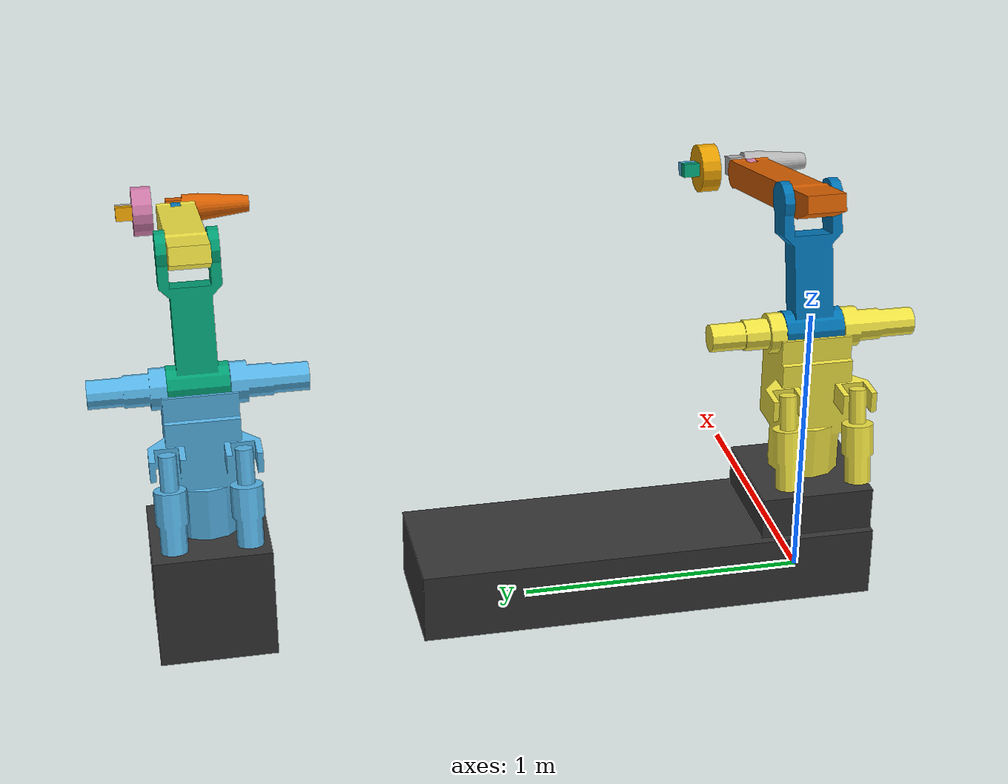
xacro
<?xml version="1.0"?>
<robot name="irp6" xmlns:xacro="http://www.ros.org/wiki/xacro">
  <property name="M_PI" value="3.14159"/>

  <xacro:include filename="$(find irp6_description)/robots/irp6both.gazebo" />
  <link name="world">
  </link>

  <joint name="base_joint" type="fixed">
    <parent link="world"/>
    <child link="tl_base"/>
  </joint>

<link name="tl_base">
  <inertial>
    <mass value="100"/>
    <inertia ixx="0" ixy="0" ixz="0" iyy="0" iyz="0" izz="0" />
    <origin xyz="0 0 0"/>
  </inertial>
  <visual>
    <origin xyz="0 .6045 .125" />
    <geometry>
      <box size=".462 1.609 .25" />
    </geometry>
    <material name="gray">
      <color rgba=".2 .2 .2 1" />
    </material>
  </visual>

  <collision>
    <origin xyz="0 .6045 .07" />
    <geometry>
      <box size=".462 1.609 .2" />
    </geometry>
  </collision>
</link>

<link name="tl_t">
  <inertial>
    <mass value="50"/>
    <inertia ixx="1" ixy="0" ixz="0" iyy="1" iyz="0" izz="1" />
    <origin xyz="0 0 0"/>
  </inertial>
  <visual>
    <origin xyz="0 0 0.075" />
    <geometry>
      <box size="0.4 0.4 0.15" />
    </geometry>
    <material name="gray">
      <color rgba=".2 .2 .2 1" />
    </material>
  </visual>

  <collision>
    <origin xyz="0 0 0" />
    <geometry>
      <box size=".0 .0 .0" />
    </geometry>
  </collision>
</link>

<joint name="Irp6otmJoint1" type="prismatic">
  <parent link="tl_base"/>
  <child link="tl_t"/>
  <origin xyz="0 0 .25" rpy="0 0 0" />
  <axis xyz="0 1 0" />
  <limit upper="1.209" lower="0" effort="10" velocity=".53" />
</joint>

  <joint name="Irp6otmJoint2" type="revolute">
    <origin rpy="0 0 0" xyz="0.0 0.0 0.3"/>
    <axis xyz="0 0 1"/>
    <limit lower="-2.96705973" upper="2.96705973" effort="10.0" velocity="10.0" />
    <parent link="tl_t"/>
    <child link="tl_1"/>
  </joint>

  <link name="tl_1">
    <inertial>
      <mass value="50"/>
      <origin xyz="0.0 0.0 0.0"/>
      <inertia ixx="10" ixy="0" ixz="0" iyy="10" iyz="0" izz="10"/>
    </inertial>

    <visual>
      <origin rpy="-1.57 0 0.0" xyz="0 0 0.4"/>
      <geometry>
        <mesh filename="package://irp6_description/meshes/link1.dae" />
      </geometry>
    </visual>

    <collision>
      <origin rpy="-1.57 0 0.0" xyz="0 0 0.4"/>
      <geometry>
	<box size="0.1 0.10 0.1"/>
      </geometry>
    </collision>
  </link>

  <joint name="Irp6otmJoint3" type="revolute">
    <origin rpy="-1.570795 0 0" xyz="0.0 0.0 0.4"/>
    <axis xyz="0 0 1"/>
    <limit lower="-1.8" upper="-0.872664626" effort="10.0" velocity="10.0" />
    <parent link="tl_1"/>
    <child link="tl_2"/>
  </joint>

  <link name="tl_2">
    <inertial>
      <mass value="20"/>
      <origin xyz="0.0 0.0 0.0"/>
      <inertia ixx="10" ixy="0" ixz="0" iyy="10" iyz="0" izz="10"/>
    </inertial>

    <visual>
      <origin rpy="0 0 0.0" xyz="0.455 0.0 0.0"/>
      <geometry>
        <mesh filename="package://irp6_description/meshes/link2.dae" />
      </geometry>
    </visual>

    <collision>
      <origin rpy="0 0 0.0" xyz="0.2 0.0 0.0"/>
      <geometry>
        <box size="0.4 0.10 0.2"/>
      </geometry>
    </collision>
  </link>

  <joint name="Irp6otmJoint4" type="revolute">
    <origin rpy="0 0 0.0" xyz="0.455 0.0 0.0"/>
    <axis xyz="0 0 1"/>
    <limit lower="-0.3" upper="0.5" effort="10.0" velocity="10.0" />
    <parent link="tl_2"/>
    <child link="tl_3"/>
  </joint>

  <link name="tl_3">
    <inertial>
      <mass value="20"/>
      <origin xyz="0.0 0.0 0.0"/>
      <inertia ixx="10" ixy="0" ixz="0" iyy="10" iyz="0" izz="10"/>
    </inertial>

    <visual>
      <origin rpy="0 0 1.57" xyz="0 0.67 0.0"/>
      <geometry>
        <mesh filename="package://irp6_description/meshes/link3.dae" />
      </geometry>
    </visual>

    <collision>
      <origin rpy="0 0 1.57" xyz="0 0.67 0.0"/>
      <geometry>
        <mesh filename="package://irp6_description/meshes/link3b.dae" scale="1.0 1.0 1.3" />
      </geometry>
    </collision>
  </link>

  <joint name="Irp6otmJoint5" type="revolute">
    <origin rpy="0 0 0" xyz="0.0 0.67 0.0"/>
    <axis xyz="0 0 1"/>
    <limit lower="-1.57" upper="1.57" effort="10.0" velocity="10.0" />
    <parent link="tl_3"/>
    <child link="tl_4"/>
  </joint>

  <link name="tl_4">
    <inertial>
      <mass value="15"/>
      <origin xyz="0.0 0.0 0.0"/>
      <inertia ixx="10" ixy="0" ixz="0" iyy="10" iyz="0" izz="10"/>
    </inertial>

    <visual>
      <origin rpy="1.57 0 1.57" xyz="0.0 0.175 0.0"/>
      <geometry>
        <mesh filename="package://irp6_description/meshes/link4.dae" />
      </geometry>
    </visual>

    <collision>
      <origin rpy="1.57 0 1.57" xyz="0.0 0.175 0.0"/>
      <geometry>
        <mesh filename="package://irp6_description/meshes/link4b.dae" />
      </geometry>
    </collision>
  </link>

  <joint name="Irp6otmJoint6" type="revolute">
    <origin rpy="-1.570795 0 0" xyz="0.0 0.0 0.0"/>
    <axis xyz="0 0 1"/>
    <limit lower="-0.5" upper="5.14" effort="10.0" velocity="10.0" />
    <parent link="tl_4"/>
    <child link="tl_5"/>
  </joint>

  <link name="tl_5">
    <inertial>
      <mass value="15"/>
      <origin xyz="0.0 0.0 0.0"/>
      <inertia ixx="10" ixy="0" ixz="0" iyy="10" iyz="0" izz="10"/>
    </inertial>

    <visual>
      <origin rpy="1.57 0 0.0" xyz="0.0 0.0 0.19"/>
      <geometry>
        <mesh filename="package://irp6_description/meshes/link5.dae" />
      </geometry>
    </visual>

    <collision>
      <origin rpy="1.57 0 0.0" xyz="0.0 0.0 0.19"/>
      <geometry>
        <mesh filename="package://irp6_description/meshes/link5b.dae" />
      </geometry>
    </collision>
  </link>

  <joint name="Irp6otmJoint7" type="revolute">
    <origin rpy="1.570795 0 0" xyz="0.0 0.0 0.19"/>
    <axis xyz="0 0 1"/>
    <limit lower="-3.0" upper="2.9" effort="10.0" velocity="10.0" />
    <parent link="tl_5"/>
    <child link="tl_6"/>
  </joint>

  <link name="tl_6">
    <inertial>
      <mass value="5"/>
      <origin xyz="0.0 0.0 0.0"/>
      <inertia ixx="10" ixy="0" ixz="0" iyy="10" iyz="0" izz="10"/>
    </inertial>

    <visual>
      <origin rpy="0 0 0.0" xyz="0 0.0 0.15"/>
      <geometry>
         <mesh filename="package://irp6_description/meshes/link6.dae" />
      </geometry>
    </visual>

    <collision>
      <origin rpy="0.0 0 0.0" xyz="0 0.0 -0.05"/>
      <geometry>
        <cylinder radius="0.1" length="0.10" />
      </geometry>
    </collision>
  </link>

  <joint name="Irp6ottfgJoint1" type="prismatic">
    <origin rpy="0 0 0" xyz="0.0 0.0 0.15"/>
    <parent link="tl_6"/>
    <child link="tl_g1"/>
    <axis xyz="0 1 0" />
    <limit upper="0.1" lower="0" effort="10" velocity=".53" />
  </joint>

  <joint name="Irp6ottfgJoint1a" type="prismatic">
    <origin rpy="0 0 0" xyz="0.0 0.0 0.15"/>
    <parent link="tl_6"/>
    <child link="tl_g2"/>
    <axis xyz="0 -1 0" />
    <limit upper="0.1" lower="0" effort="10" velocity=".53" />
    <mimic joint="Irp6ottfgJoint1" />
  </joint>

  <link name="tl_g1">
    <inertial>
      <mass value="0.5"/>
      <origin xyz="0.0 0.0 0.0"/>
      <inertia ixx="10" ixy="0" ixz="0" iyy="10" iyz="0" izz="10"/>
    </inertial>

    <visual>
      <origin rpy="0 0 0.0" xyz="0 0.02 0.0"/>
      <geometry>
         <box size="0.05 0.04 0.12" />
      </geometry>
    </visual>

    <collision>
      <origin rpy="0.0 0 0.0" xyz="0 0.02 0.0"/>
      <geometry>
        <box size="0.05 0.04 0.12" />
      </geometry>
    </collision>
  </link>

<link name="tl_g2">
    <inertial>
      <mass value="0.5"/>
      <origin xyz="0.0 0.0 0.0"/>
      <inertia ixx="10" ixy="0" ixz="0" iyy="10" iyz="0" izz="10"/>
    </inertial>

    <visual>
      <origin rpy="0 0 0.0" xyz="0 -0.02 0.0"/>
      <geometry>
         <box size="0.05 0.04 0.12" />
      </geometry>
    </visual>

    <collision>
      <origin rpy="0.0 0 0.0" xyz="0 -0.02 0.0"/>
      <geometry>
        <box size="0.05 0.04 0.12" />
      </geometry>
    </collision>
  </link>

<joint name="tl_camera" type="fixed">
    <origin rpy="0.0 0.0 1.57" xyz="-0.0551 0.0 0.13"/>
    <parent link="tl_6"/>
    <child link="t_c"/>
  </joint>

<link name="t_c">
</link>

<joint name="tl_camera_optical_frame" type="fixed">
    <origin rpy="0.0 0.0 3.14" xyz="0 0 0"/>
    <parent link="t_c"/>
    <child link="t_c_optical_frame"/>
</joint>

<link name="t_c_optical_frame">
</link>

<joint name="t_calib_joint" type="fixed">
    <origin xyz="-0.50751 0.769 -0.016818" rpy="0.0 ${M_PI/2} ${M_PI/4}"/>
    <parent link="tl_3"/>
    <child link="t_calib_link"/>
</joint>

<link name="t_calib_link">
</link>

<joint name="tl_kinect" type="fixed">
    <origin xyz="0.88317 -0.21239 2.0291" rpy="-2.8825 1.3979 -2.8821"/>
    <parent link="tl_base"/>
    <child link="t_kinect"/>
</joint>

<link name="t_kinect">
</link>

<joint name="tl_kinect_optical_frame" type="fixed">
    <origin xyz="0 0 0" rpy="-1.57 0.0 -1.57" />
    <parent link="t_kinect"/>
    <child link="t_kinect_optical_frame"/>
</joint>

<link name="t_kinect_optical_frame">
</link>

  <joint name="base_joint_p" type="fixed">
    <origin rpy="0 0 0.0" xyz="0.0 2.11 0.0"/>
    <parent link="world"/>
    <child link="pl_base"/>
  </joint>

  <link name="pl_base">
    <inertial>
      <mass value="100" />
      <origin xyz="0.0 0.0 0.0" />
      <inertia ixx="1.0" ixy="0.0" ixz="0.0"
               iyy="1.0" iyz="0.0"
               izz="1.0" />
    </inertial>

    <collision>
      <origin xyz="0 0 0.15" rpy="0 0 0" />
      <geometry>
        <box size="0.4 0.4 0.3" />
      </geometry>
    </collision>
    <visual>
      <origin xyz="0 0 0.2" />
      <geometry>
        <box size="0.4 0.4 0.4" />
      </geometry>
      <material name="gray">
      <color rgba=".2 .2 .2 1" />
    </material>
  </visual>
  </link>

  <joint name="Irp6pmJoint1" type="revolute">
    <origin rpy="0 0 0" xyz="0.0 0.0 0.55"/>
    <axis xyz="0 0 1"/>
    <limit lower="-2.96705973" upper="2.96705973" effort="10.0" velocity="10.0" />
    <parent link="pl_base"/>
    <child link="pl_1"/>
  </joint>

  <link name="pl_1">
    <inertial>
      <mass value="50"/>
      <origin xyz="0.0 0.0 0.0"/>
      <inertia ixx="10" ixy="0" ixz="0" iyy="10" iyz="0" izz="10"/>
    </inertial>

    <visual>
      <origin rpy="-1.57 0 0.0" xyz="0 0 0.4"/>
      <geometry>
        <mesh filename="package://irp6_description/meshes/link1.dae" />
      </geometry>
    </visual>

    <collision>
      <origin rpy="-1.57 0 0.0" xyz="0 0 0.4"/>
      <geometry>
	<box size="0.1 0.10 0.1"/>
      </geometry>
    </collision>
  </link>

  <joint name="Irp6pmJoint2" type="revolute">
    <origin rpy="-1.570795 0 0" xyz="0.0 0.0 0.4"/>
    <axis xyz="0 0 1"/>
    <limit lower="-1.8" upper="-0.872664626" effort="10.0" velocity="10.0" />
    <parent link="pl_1"/>
    <child link="pl_2"/>
  </joint>

  <link name="pl_2">
    <inertial>
      <mass value="20"/>
      <origin xyz="0.0 0.0 0.0"/>
      <inertia ixx="10" ixy="0" ixz="0" iyy="10" iyz="0" izz="10"/>
    </inertial>

    <visual>
      <origin rpy="0 0 0.0" xyz="0.455 0.0 0.0"/>
      <geometry>
        <mesh filename="package://irp6_description/meshes/link2.dae" />
      </geometry>
    </visual>

    <collision>
      <origin rpy="0 0 0.0" xyz="0.2 0.0 0.0"/>
      <geometry>
        <box size="0.4 0.10 0.2"/>
      </geometry>
    </collision>
  </link>

  <joint name="Irp6pmJoint3" type="revolute">
    <origin rpy="0 0 0.0" xyz="0.455 0.0 0.0"/>
    <axis xyz="0 0 1"/>
    <limit lower="-0.3" upper="0.5" effort="10.0" velocity="10.0" />
    <parent link="pl_2"/>
    <child link="pl_3"/>
  </joint>

  <link name="pl_3">
    <inertial>
      <mass value="20"/>
      <origin xyz="0.0 0.0 0.0"/>
      <inertia ixx="10" ixy="0" ixz="0" iyy="10" iyz="0" izz="10"/>
    </inertial>

    <visual>
      <origin rpy="0 0 1.57" xyz="0 0.67 0.0"/>
      <geometry>
        <mesh filename="package://irp6_description/meshes/link3.dae" />
      </geometry>
    </visual>

    <collision>
      <origin rpy="0 0 1.57" xyz="0 0.67 0.0"/>
      <geometry>
        <mesh filename="package://irp6_description/meshes/link3b.dae" scale="1.0 1.0 1.3" />
      </geometry>
    </collision>
  </link>

  <joint name="Irp6pmJoint4" type="revolute">
    <origin rpy="0 0 0" xyz="0.0 0.67 0.0"/>
    <axis xyz="0 0 1"/>
    <limit lower="-1.57" upper="1.57" effort="10.0" velocity="10.0" />
    <parent link="pl_3"/>
    <child link="pl_4"/>
  </joint>

  <link name="pl_4">
    <inertial>
      <mass value="15"/>
      <origin xyz="0.0 0.0 0.0"/>
      <inertia ixx="10" ixy="0" ixz="0" iyy="10" iyz="0" izz="10"/>
    </inertial>

    <visual>
      <origin rpy="1.57 0 1.57" xyz="0.0 0.175 0.0"/>
      <geometry>
        <mesh filename="package://irp6_description/meshes/link4.dae" />
      </geometry>
    </visual>

    <collision>
      <origin rpy="1.57 0 1.57" xyz="0.0 0.175 0.0"/>
      <geometry>
        <mesh filename="package://irp6_description/meshes/link4b.dae" />
      </geometry>
    </collision>
  </link>

  <joint name="Irp6pmJoint5" type="revolute">
    <origin rpy="-1.570795 0 0" xyz="0.0 0.0 0.0"/>
    <axis xyz="0 0 1"/>
    <limit lower="-0.5" upper="5.14" effort="10.0" velocity="10.0" />
    <parent link="pl_4"/>
    <child link="pl_5"/>
  </joint>

  <link name="pl_5">
    <inertial>
      <mass value="15"/>
      <origin xyz="0.0 0.0 0.0"/>
      <inertia ixx="10" ixy="0" ixz="0" iyy="10" iyz="0" izz="10"/>
    </inertial>

    <visual>
      <origin rpy="1.57 0 0.0" xyz="0.0 0.0 0.19"/>
      <geometry>
        <mesh filename="package://irp6_description/meshes/link5.dae" />
      </geometry>
    </visual>

    <collision>
      <origin rpy="1.57 0 0.0" xyz="0.0 0.0 0.19"/>
      <geometry>
        <mesh filename="package://irp6_description/meshes/link5b.dae" />
      </geometry>
    </collision>
  </link>

  <joint name="Irp6pmJoint6" type="revolute">
    <origin rpy="1.570795 0 0" xyz="0.0 0.0 0.19"/>
    <axis xyz="0 0 1"/>
    <limit lower="-3.0" upper="2.9" effort="10.0" velocity="10.0" />
    <parent link="pl_5"/>
    <child link="pl_6"/>
  </joint>

  <link name="pl_6">
    <inertial>
      <mass value="5"/>
      <origin xyz="0.0 0.0 0.0"/>
      <inertia ixx="10" ixy="0" ixz="0" iyy="10" iyz="0" izz="10"/>
    </inertial>

    <visual>
      <origin rpy="0 0 0.0" xyz="0 0.0 0.15"/>
      <geometry>
         <mesh filename="package://irp6_description/meshes/link6.dae" />
      </geometry>
    </visual>

    <collision>
      <origin rpy="0.0 0 0.0" xyz="0 0.0 -0.05"/>
      <geometry>
        <cylinder radius="0.1" length="0.10" />
      </geometry>
    </collision>
  </link>

  <joint name="Irp6ptfgJoint1" type="prismatic">
    <origin rpy="0 0 0" xyz="0.0 0.0 0.15"/>
    <parent link="pl_6"/>
    <child link="pl_g1"/>
    <axis xyz="0 1 0" />
    <limit upper="0.1" lower="0" effort="10" velocity=".53" />
  </joint>

  <joint name="Irp6ptfgJoint1a" type="prismatic">
    <origin rpy="0 0 0" xyz="0.0 0.0 0.15"/>
    <parent link="pl_6"/>
    <child link="pl_g2"/>
    <axis xyz="0 -1 0" />
    <limit upper="0.1" lower="0" effort="10" velocity=".53" />
    <mimic joint="Irp6ptfgJoint1" />
  </joint>

  <link name="pl_g1">
    <inertial>
      <mass value="0.5"/>
      <origin xyz="0.0 0.0 0.0"/>
      <inertia ixx="10" ixy="0" ixz="0" iyy="10" iyz="0" izz="10"/>
    </inertial>

    <visual>
      <origin rpy="0 0 0.0" xyz="0 0.02 0.0"/>
      <geometry>
         <box size="0.05 0.04 0.12" />
      </geometry>
    </visual>

    <collision>
      <origin rpy="0.0 0 0.0" xyz="0 0.02 0.0"/>
      <geometry>
        <box size="0.05 0.04 0.12" />
      </geometry>
    </collision>
  </link>

<link name="pl_g2">
    <inertial>
      <mass value="0.5"/>
      <origin xyz="0.0 0.0 0.0"/>
      <inertia ixx="10" ixy="0" ixz="0" iyy="10" iyz="0" izz="10"/>
    </inertial>

    <visual>
      <origin rpy="0 0 0.0" xyz="0 -0.02 0.0"/>
      <geometry>
         <box size="0.05 0.04 0.12" />
      </geometry>
    </visual>

    <collision>
      <origin rpy="0.0 0 0.0" xyz="0 -0.02 0.0"/>
      <geometry>
        <box size="0.05 0.04 0.12" />
      </geometry>
    </collision>
  </link>

<joint name="pl_camera" type="fixed">
    <origin rpy="0.0 0.0 -1.57" xyz="0.0551 0.0 0.13"/>
    <parent link="pl_6"/>
    <child link="p_c"/>
  </joint>

<link name="p_c">
</link>

<joint name="pl_camera_optical_frame" type="fixed">
    <origin rpy="0.0 0.0 3.14" xyz="0.0 0.0 0.0"/>
    <parent link="p_c"/>
    <child link="p_c_optical_frame"/>
  </joint>

<link name="p_c_optical_frame">
</link>

</robot>
